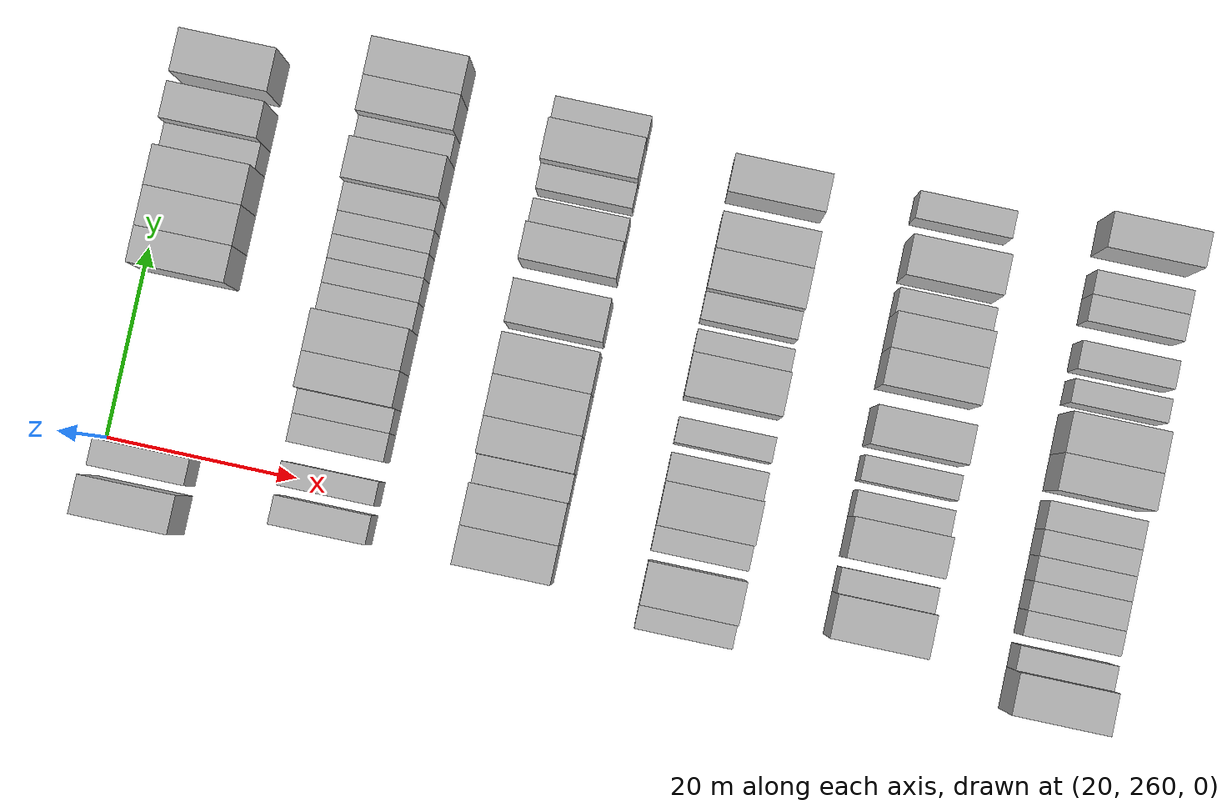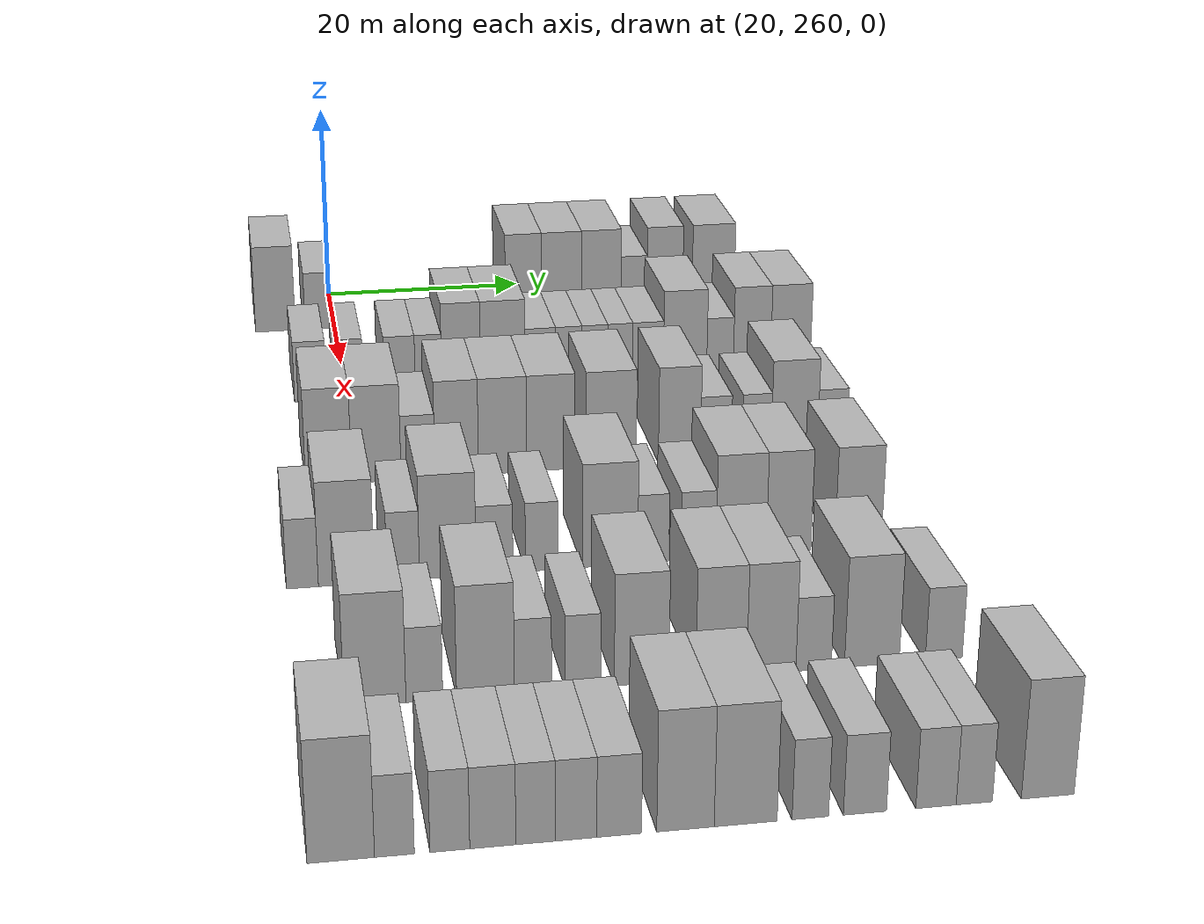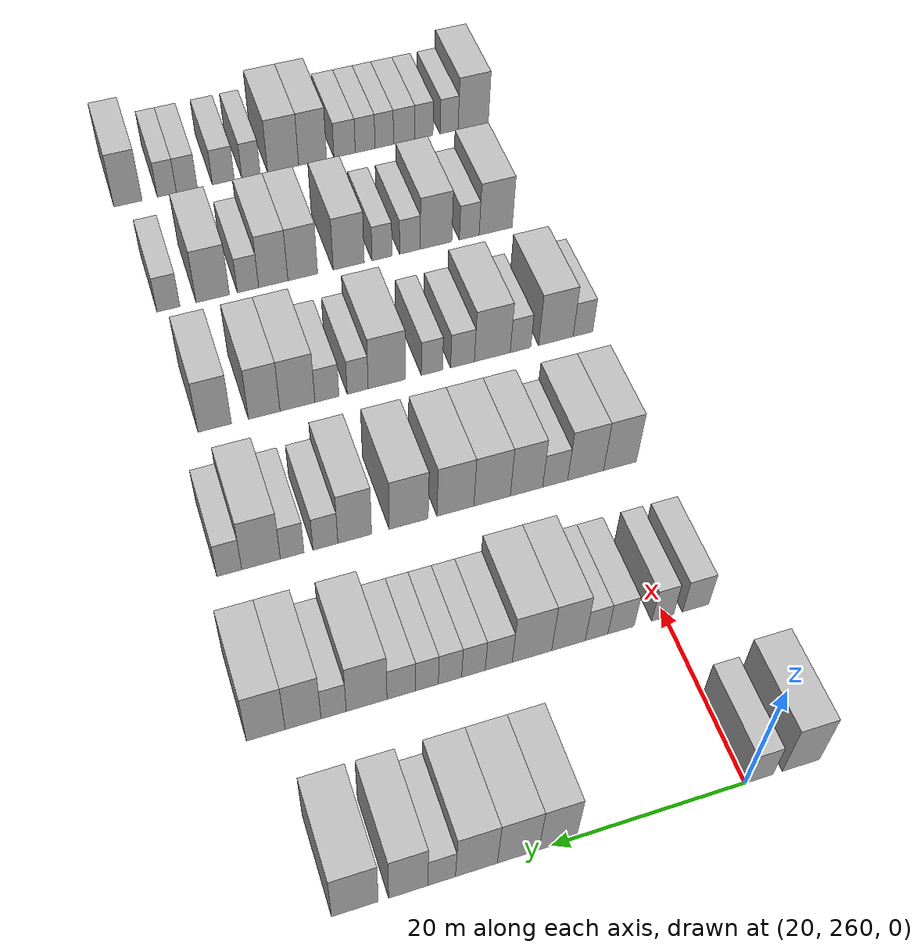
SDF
<sdf version="1.6">
 <world name="default">
  <model name="building_147">
   <static>1</static>
   <pose>25.0000 254.0329 0 0.000000 0.000000 0.000000</pose>
   <link name="link">
    <pose>0 0 4.50 0 0 0</pose>
    <collision name="collision"><geometry><box><size>10.0000 3.9989 9.0000</size></box></geometry></collision>
    <visual name="visual">
     <cast_shadows>0</cast_shadows>
     <geometry><box><size>10.0000 3.9989 9.0000</size></box></geometry>
     <material>
      <script>
       <uri>model://HANNAS_wall/materials/scripts</uri>
       <uri>model://HANNAS_wall/materials/textures</uri>
       <name>vrc/HANNAS_wall</name>
      </script>
     </material>
    </visual>
   </link>
  </model>
  <model name="building_148">
   <static>1</static>
   <pose>25.0000 258.4112 0 0.000000 0.000000 0.000000</pose>
   <link name="link">
    <pose>0 0 3.00 0 0 0</pose>
    <collision name="collision"><geometry><box><size>10.0000 2.7577 6.0000</size></box></geometry></collision>
    <visual name="visual">
     <cast_shadows>0</cast_shadows>
     <geometry><box><size>10.0000 2.7577 6.0000</size></box></geometry>
     <material>
      <script>
       <uri>model://HANNAS_wall/materials/scripts</uri>
       <uri>model://HANNAS_wall/materials/textures</uri>
       <name>vrc/HANNAS_wall</name>
      </script>
     </material>
    </visual>
   </link>
  </model>
  <model name="building_149">
   <static>1</static>
   <pose>25.0000 279.4441 0 0.000000 0.000000 0.000000</pose>
   <link name="link">
    <pose>0 0 4.50 0 0 0</pose>
    <collision name="collision"><geometry><box><size>10.0000 3.7694 9.0000</size></box></geometry></collision>
    <visual name="visual">
     <cast_shadows>0</cast_shadows>
     <geometry><box><size>10.0000 3.7694 9.0000</size></box></geometry>
     <material>
      <script>
       <uri>model://HANNAS_wall/materials/scripts</uri>
       <uri>model://HANNAS_wall/materials/textures</uri>
       <name>vrc/HANNAS_wall</name>
      </script>
     </material>
    </visual>
   </link>
  </model>
  <model name="building_150">
   <static>1</static>
   <pose>25.0000 283.4043 0 0.000000 0.000000 0.000000</pose>
   <link name="link">
    <pose>0 0 4.50 0 0 0</pose>
    <collision name="collision"><geometry><box><size>10.0000 4.1510 9.0000</size></box></geometry></collision>
    <visual name="visual">
     <cast_shadows>0</cast_shadows>
     <geometry><box><size>10.0000 4.1510 9.0000</size></box></geometry>
     <material>
      <script>
       <uri>model://HANNAS_wall/materials/scripts</uri>
       <uri>model://HANNAS_wall/materials/textures</uri>
       <name>vrc/HANNAS_wall</name>
      </script>
     </material>
    </visual>
   </link>
  </model>
  <model name="building_151">
   <static>1</static>
   <pose>25.0000 287.5503 0 0.000000 0.000000 0.000000</pose>
   <link name="link">
    <pose>0 0 4.50 0 0 0</pose>
    <collision name="collision"><geometry><box><size>10.0000 4.1408 9.0000</size></box></geometry></collision>
    <visual name="visual">
     <cast_shadows>0</cast_shadows>
     <geometry><box><size>10.0000 4.1408 9.0000</size></box></geometry>
     <material>
      <script>
       <uri>model://HANNAS_wall/materials/scripts</uri>
       <uri>model://HANNAS_wall/materials/textures</uri>
       <name>vrc/HANNAS_wall</name>
      </script>
     </material>
    </visual>
   </link>
  </model>
  <model name="building_152">
   <static>1</static>
   <pose>25.0000 290.9792 0 0.000000 0.000000 0.000000</pose>
   <link name="link">
    <pose>0 0 3.00 0 0 0</pose>
    <collision name="collision"><geometry><box><size>10.0000 2.7170 6.0000</size></box></geometry></collision>
    <visual name="visual">
     <cast_shadows>0</cast_shadows>
     <geometry><box><size>10.0000 2.7170 6.0000</size></box></geometry>
     <material>
      <script>
       <uri>model://HANNAS_wall/materials/scripts</uri>
       <uri>model://HANNAS_wall/materials/textures</uri>
       <name>vrc/HANNAS_wall</name>
      </script>
     </material>
    </visual>
   </link>
  </model>
  <model name="building_153">
   <static>1</static>
   <pose>25.0000 294.2269 0 0.000000 0.000000 0.000000</pose>
   <link name="link">
    <pose>0 0 4.50 0 0 0</pose>
    <collision name="collision"><geometry><box><size>10.0000 3.7784 9.0000</size></box></geometry></collision>
    <visual name="visual">
     <cast_shadows>0</cast_shadows>
     <geometry><box><size>10.0000 3.7784 9.0000</size></box></geometry>
     <material>
      <script>
       <uri>model://HANNAS_wall/materials/scripts</uri>
       <uri>model://HANNAS_wall/materials/textures</uri>
       <name>vrc/HANNAS_wall</name>
      </script>
     </material>
    </visual>
   </link>
  </model>
  <model name="building_154">
   <static>1</static>
   <pose>25.0000 299.3567 0 0.000000 0.000000 0.000000</pose>
   <link name="link">
    <pose>0 0 4.50 0 0 0</pose>
    <collision name="collision"><geometry><box><size>10.0000 4.4814 9.0000</size></box></geometry></collision>
    <visual name="visual">
     <cast_shadows>0</cast_shadows>
     <geometry><box><size>10.0000 4.4814 9.0000</size></box></geometry>
     <material>
      <script>
       <uri>model://HANNAS_wall/materials/scripts</uri>
       <uri>model://HANNAS_wall/materials/textures</uri>
       <name>vrc/HANNAS_wall</name>
      </script>
     </material>
    </visual>
   </link>
  </model>
  <model name="building_321">
   <static>1</static>
   <pose>44.0000 256.5595 0 0.000000 0.000000 0.000000</pose>
   <link name="link">
    <pose>0 0 3.00 0 0 0</pose>
    <collision name="collision"><geometry><box><size>10.0000 2.9918 6.0000</size></box></geometry></collision>
    <visual name="visual">
     <cast_shadows>0</cast_shadows>
     <geometry><box><size>10.0000 2.9918 6.0000</size></box></geometry>
     <material>
      <script>
       <uri>model://HANNAS_wall/materials/scripts</uri>
       <uri>model://HANNAS_wall/materials/textures</uri>
       <name>vrc/HANNAS_wall</name>
      </script>
     </material>
    </visual>
   </link>
  </model>
  <model name="building_322">
   <static>1</static>
   <pose>44.0000 260.2918 0 0.000000 0.000000 0.000000</pose>
   <link name="link">
    <pose>0 0 3.00 0 0 0</pose>
    <collision name="collision"><geometry><box><size>10.0000 2.4728 6.0000</size></box></geometry></collision>
    <visual name="visual">
     <cast_shadows>0</cast_shadows>
     <geometry><box><size>10.0000 2.4728 6.0000</size></box></geometry>
     <material>
      <script>
       <uri>model://HANNAS_wall/materials/scripts</uri>
       <uri>model://HANNAS_wall/materials/textures</uri>
       <name>vrc/HANNAS_wall</name>
      </script>
     </material>
    </visual>
   </link>
  </model>
  <model name="building_323">
   <static>1</static>
   <pose>44.0000 264.9875 0 0.000000 0.000000 0.000000</pose>
   <link name="link">
    <pose>0 0 3.00 0 0 0</pose>
    <collision name="collision"><geometry><box><size>10.0000 2.9187 6.0000</size></box></geometry></collision>
    <visual name="visual">
     <cast_shadows>0</cast_shadows>
     <geometry><box><size>10.0000 2.9187 6.0000</size></box></geometry>
     <material>
      <script>
       <uri>model://HANNAS_wall/materials/scripts</uri>
       <uri>model://HANNAS_wall/materials/textures</uri>
       <name>vrc/HANNAS_wall</name>
      </script>
     </material>
    </visual>
   </link>
  </model>
  <model name="building_324">
   <static>1</static>
   <pose>44.0000 267.7029 0 0.000000 0.000000 0.000000</pose>
   <link name="link">
    <pose>0 0 3.00 0 0 0</pose>
    <collision name="collision"><geometry><box><size>10.0000 2.5121 6.0000</size></box></geometry></collision>
    <visual name="visual">
     <cast_shadows>0</cast_shadows>
     <geometry><box><size>10.0000 2.5121 6.0000</size></box></geometry>
     <material>
      <script>
       <uri>model://HANNAS_wall/materials/scripts</uri>
       <uri>model://HANNAS_wall/materials/textures</uri>
       <name>vrc/HANNAS_wall</name>
      </script>
     </material>
    </visual>
   </link>
  </model>
  <model name="building_325">
   <static>1</static>
   <pose>44.0000 270.8079 0 0.000000 0.000000 0.000000</pose>
   <link name="link">
    <pose>0 0 4.50 0 0 0</pose>
    <collision name="collision"><geometry><box><size>10.0000 3.6978 9.0000</size></box></geometry></collision>
    <visual name="visual">
     <cast_shadows>0</cast_shadows>
     <geometry><box><size>10.0000 3.6978 9.0000</size></box></geometry>
     <material>
      <script>
       <uri>model://HANNAS_wall/materials/scripts</uri>
       <uri>model://HANNAS_wall/materials/textures</uri>
       <name>vrc/HANNAS_wall</name>
      </script>
     </material>
    </visual>
   </link>
  </model>
  <model name="building_326">
   <static>1</static>
   <pose>44.0000 274.8017 0 0.000000 0.000000 0.000000</pose>
   <link name="link">
    <pose>0 0 4.50 0 0 0</pose>
    <collision name="collision"><geometry><box><size>10.0000 4.2897 9.0000</size></box></geometry></collision>
    <visual name="visual">
     <cast_shadows>0</cast_shadows>
     <geometry><box><size>10.0000 4.2897 9.0000</size></box></geometry>
     <material>
      <script>
       <uri>model://HANNAS_wall/materials/scripts</uri>
       <uri>model://HANNAS_wall/materials/textures</uri>
       <name>vrc/HANNAS_wall</name>
      </script>
     </material>
    </visual>
   </link>
  </model>
  <model name="building_327">
   <static>1</static>
   <pose>44.0000 278.4101 0 0.000000 0.000000 0.000000</pose>
   <link name="link">
    <pose>0 0 3.00 0 0 0</pose>
    <collision name="collision"><geometry><box><size>10.0000 2.9271 6.0000</size></box></geometry></collision>
    <visual name="visual">
     <cast_shadows>0</cast_shadows>
     <geometry><box><size>10.0000 2.9271 6.0000</size></box></geometry>
     <material>
      <script>
       <uri>model://HANNAS_wall/materials/scripts</uri>
       <uri>model://HANNAS_wall/materials/textures</uri>
       <name>vrc/HANNAS_wall</name>
      </script>
     </material>
    </visual>
   </link>
  </model>
  <model name="building_328">
   <static>1</static>
   <pose>44.0000 281.1395 0 0.000000 0.000000 0.000000</pose>
   <link name="link">
    <pose>0 0 3.00 0 0 0</pose>
    <collision name="collision"><geometry><box><size>10.0000 2.5317 6.0000</size></box></geometry></collision>
    <visual name="visual">
     <cast_shadows>0</cast_shadows>
     <geometry><box><size>10.0000 2.5317 6.0000</size></box></geometry>
     <material>
      <script>
       <uri>model://HANNAS_wall/materials/scripts</uri>
       <uri>model://HANNAS_wall/materials/textures</uri>
       <name>vrc/HANNAS_wall</name>
      </script>
     </material>
    </visual>
   </link>
  </model>
  <model name="building_329">
   <static>1</static>
   <pose>44.0000 283.6534 0 0.000000 0.000000 0.000000</pose>
   <link name="link">
    <pose>0 0 3.00 0 0 0</pose>
    <collision name="collision"><geometry><box><size>10.0000 2.4962 6.0000</size></box></geometry></collision>
    <visual name="visual">
     <cast_shadows>0</cast_shadows>
     <geometry><box><size>10.0000 2.4962 6.0000</size></box></geometry>
     <material>
      <script>
       <uri>model://HANNAS_wall/materials/scripts</uri>
       <uri>model://HANNAS_wall/materials/textures</uri>
       <name>vrc/HANNAS_wall</name>
      </script>
     </material>
    </visual>
   </link>
  </model>
  <model name="building_330">
   <static>1</static>
   <pose>44.0000 286.1094 0 0.000000 0.000000 0.000000</pose>
   <link name="link">
    <pose>0 0 3.00 0 0 0</pose>
    <collision name="collision"><geometry><box><size>10.0000 2.4158 6.0000</size></box></geometry></collision>
    <visual name="visual">
     <cast_shadows>0</cast_shadows>
     <geometry><box><size>10.0000 2.4158 6.0000</size></box></geometry>
     <material>
      <script>
       <uri>model://HANNAS_wall/materials/scripts</uri>
       <uri>model://HANNAS_wall/materials/textures</uri>
       <name>vrc/HANNAS_wall</name>
      </script>
     </material>
    </visual>
   </link>
  </model>
  <model name="building_331">
   <static>1</static>
   <pose>44.0000 288.8158 0 0.000000 0.000000 0.000000</pose>
   <link name="link">
    <pose>0 0 3.00 0 0 0</pose>
    <collision name="collision"><geometry><box><size>10.0000 2.9971 6.0000</size></box></geometry></collision>
    <visual name="visual">
     <cast_shadows>0</cast_shadows>
     <geometry><box><size>10.0000 2.9971 6.0000</size></box></geometry>
     <material>
      <script>
       <uri>model://HANNAS_wall/materials/scripts</uri>
       <uri>model://HANNAS_wall/materials/textures</uri>
       <name>vrc/HANNAS_wall</name>
      </script>
     </material>
    </visual>
   </link>
  </model>
  <model name="building_332">
   <static>1</static>
   <pose>44.0000 292.4411 0 0.000000 0.000000 0.000000</pose>
   <link name="link">
    <pose>0 0 4.50 0 0 0</pose>
    <collision name="collision"><geometry><box><size>10.0000 4.2535 9.0000</size></box></geometry></collision>
    <visual name="visual">
     <cast_shadows>0</cast_shadows>
     <geometry><box><size>10.0000 4.2535 9.0000</size></box></geometry>
     <material>
      <script>
       <uri>model://HANNAS_wall/materials/scripts</uri>
       <uri>model://HANNAS_wall/materials/textures</uri>
       <name>vrc/HANNAS_wall</name>
      </script>
     </material>
    </visual>
   </link>
  </model>
  <model name="building_333">
   <static>1</static>
   <pose>44.0000 295.8753 0 0.000000 0.000000 0.000000</pose>
   <link name="link">
    <pose>0 0 3.00 0 0 0</pose>
    <collision name="collision"><geometry><box><size>10.0000 2.6148 6.0000</size></box></geometry></collision>
    <visual name="visual">
     <cast_shadows>0</cast_shadows>
     <geometry><box><size>10.0000 2.6148 6.0000</size></box></geometry>
     <material>
      <script>
       <uri>model://HANNAS_wall/materials/scripts</uri>
       <uri>model://HANNAS_wall/materials/textures</uri>
       <name>vrc/HANNAS_wall</name>
      </script>
     </material>
    </visual>
   </link>
  </model>
  <model name="building_334">
   <static>1</static>
   <pose>44.0000 299.0225 0 0.000000 0.000000 0.000000</pose>
   <link name="link">
    <pose>0 0 4.50 0 0 0</pose>
    <collision name="collision"><geometry><box><size>10.0000 3.6796 9.0000</size></box></geometry></collision>
    <visual name="visual">
     <cast_shadows>0</cast_shadows>
     <geometry><box><size>10.0000 3.6796 9.0000</size></box></geometry>
     <material>
      <script>
       <uri>model://HANNAS_wall/materials/scripts</uri>
       <uri>model://HANNAS_wall/materials/textures</uri>
       <name>vrc/HANNAS_wall</name>
      </script>
     </material>
    </visual>
   </link>
  </model>
  <model name="building_335">
   <static>1</static>
   <pose>44.0000 302.8385 0 0.000000 0.000000 0.000000</pose>
   <link name="link">
    <pose>0 0 4.50 0 0 0</pose>
    <collision name="collision"><geometry><box><size>10.0000 3.9523 9.0000</size></box></geometry></collision>
    <visual name="visual">
     <cast_shadows>0</cast_shadows>
     <geometry><box><size>10.0000 3.9523 9.0000</size></box></geometry>
     <material>
      <script>
       <uri>model://HANNAS_wall/materials/scripts</uri>
       <uri>model://HANNAS_wall/materials/textures</uri>
       <name>vrc/HANNAS_wall</name>
      </script>
     </material>
    </visual>
   </link>
  </model>
  <model name="building_501">
   <static>1</static>
   <pose>63.0000 257.0962 0 0.000000 0.000000 0.000000</pose>
   <link name="link">
    <pose>0 0 4.50 0 0 0</pose>
    <collision name="collision"><geometry><box><size>10.0000 3.9691 9.0000</size></box></geometry></collision>
    <visual name="visual">
     <cast_shadows>0</cast_shadows>
     <geometry><box><size>10.0000 3.9691 9.0000</size></box></geometry>
     <material>
      <script>
       <uri>model://HANNAS_wall/materials/scripts</uri>
       <uri>model://HANNAS_wall/materials/textures</uri>
       <name>vrc/HANNAS_wall</name>
      </script>
     </material>
    </visual>
   </link>
  </model>
  <model name="building_502">
   <static>1</static>
   <pose>63.0000 261.2250 0 0.000000 0.000000 0.000000</pose>
   <link name="link">
    <pose>0 0 4.50 0 0 0</pose>
    <collision name="collision"><geometry><box><size>10.0000 4.2884 9.0000</size></box></geometry></collision>
    <visual name="visual">
     <cast_shadows>0</cast_shadows>
     <geometry><box><size>10.0000 4.2884 9.0000</size></box></geometry>
     <material>
      <script>
       <uri>model://HANNAS_wall/materials/scripts</uri>
       <uri>model://HANNAS_wall/materials/textures</uri>
       <name>vrc/HANNAS_wall</name>
      </script>
     </material>
    </visual>
   </link>
  </model>
  <model name="building_503">
   <static>1</static>
   <pose>63.0000 264.8479 0 0.000000 0.000000 0.000000</pose>
   <link name="link">
    <pose>0 0 3.00 0 0 0</pose>
    <collision name="collision"><geometry><box><size>10.0000 2.9575 6.0000</size></box></geometry></collision>
    <visual name="visual">
     <cast_shadows>0</cast_shadows>
     <geometry><box><size>10.0000 2.9575 6.0000</size></box></geometry>
     <material>
      <script>
       <uri>model://HANNAS_wall/materials/scripts</uri>
       <uri>model://HANNAS_wall/materials/textures</uri>
       <name>vrc/HANNAS_wall</name>
      </script>
     </material>
    </visual>
   </link>
  </model>
  <model name="building_504">
   <static>1</static>
   <pose>63.0000 268.2348 0 0.000000 0.000000 0.000000</pose>
   <link name="link">
    <pose>0 0 4.50 0 0 0</pose>
    <collision name="collision"><geometry><box><size>10.0000 3.8164 9.0000</size></box></geometry></collision>
    <visual name="visual">
     <cast_shadows>0</cast_shadows>
     <geometry><box><size>10.0000 3.8164 9.0000</size></box></geometry>
     <material>
      <script>
       <uri>model://HANNAS_wall/materials/scripts</uri>
       <uri>model://HANNAS_wall/materials/textures</uri>
       <name>vrc/HANNAS_wall</name>
      </script>
     </material>
    </visual>
   </link>
  </model>
  <model name="building_505">
   <static>1</static>
   <pose>63.0000 272.2669 0 0.000000 0.000000 0.000000</pose>
   <link name="link">
    <pose>0 0 4.50 0 0 0</pose>
    <collision name="collision"><geometry><box><size>10.0000 4.2477 9.0000</size></box></geometry></collision>
    <visual name="visual">
     <cast_shadows>0</cast_shadows>
     <geometry><box><size>10.0000 4.2477 9.0000</size></box></geometry>
     <material>
      <script>
       <uri>model://HANNAS_wall/materials/scripts</uri>
       <uri>model://HANNAS_wall/materials/textures</uri>
       <name>vrc/HANNAS_wall</name>
      </script>
     </material>
    </visual>
   </link>
  </model>
  <model name="building_506">
   <static>1</static>
   <pose>63.0000 276.5246 0 0.000000 0.000000 0.000000</pose>
   <link name="link">
    <pose>0 0 4.50 0 0 0</pose>
    <collision name="collision"><geometry><box><size>10.0000 4.2677 9.0000</size></box></geometry></collision>
    <visual name="visual">
     <cast_shadows>0</cast_shadows>
     <geometry><box><size>10.0000 4.2677 9.0000</size></box></geometry>
     <material>
      <script>
       <uri>model://HANNAS_wall/materials/scripts</uri>
       <uri>model://HANNAS_wall/materials/textures</uri>
       <name>vrc/HANNAS_wall</name>
      </script>
     </material>
    </visual>
   </link>
  </model>
  <model name="building_507">
   <static>1</static>
   <pose>63.0000 281.8827 0 0.000000 0.000000 0.000000</pose>
   <link name="link">
    <pose>0 0 4.50 0 0 0</pose>
    <collision name="collision"><geometry><box><size>10.0000 4.4486 9.0000</size></box></geometry></collision>
    <visual name="visual">
     <cast_shadows>0</cast_shadows>
     <geometry><box><size>10.0000 4.4486 9.0000</size></box></geometry>
     <material>
      <script>
       <uri>model://HANNAS_wall/materials/scripts</uri>
       <uri>model://HANNAS_wall/materials/textures</uri>
       <name>vrc/HANNAS_wall</name>
      </script>
     </material>
    </visual>
   </link>
  </model>
  <model name="building_508">
   <static>1</static>
   <pose>63.0000 288.0001 0 0.000000 0.000000 0.000000</pose>
   <link name="link">
    <pose>0 0 4.50 0 0 0</pose>
    <collision name="collision"><geometry><box><size>10.0000 3.7861 9.0000</size></box></geometry></collision>
    <visual name="visual">
     <cast_shadows>0</cast_shadows>
     <geometry><box><size>10.0000 3.7861 9.0000</size></box></geometry>
     <material>
      <script>
       <uri>model://HANNAS_wall/materials/scripts</uri>
       <uri>model://HANNAS_wall/materials/textures</uri>
       <name>vrc/HANNAS_wall</name>
      </script>
     </material>
    </visual>
   </link>
  </model>
  <model name="building_509">
   <static>1</static>
   <pose>63.0000 291.2832 0 0.000000 0.000000 0.000000</pose>
   <link name="link">
    <pose>0 0 3.00 0 0 0</pose>
    <collision name="collision"><geometry><box><size>10.0000 2.7801 6.0000</size></box></geometry></collision>
    <visual name="visual">
     <cast_shadows>0</cast_shadows>
     <geometry><box><size>10.0000 2.7801 6.0000</size></box></geometry>
     <material>
      <script>
       <uri>model://HANNAS_wall/materials/scripts</uri>
       <uri>model://HANNAS_wall/materials/textures</uri>
       <name>vrc/HANNAS_wall</name>
      </script>
     </material>
    </visual>
   </link>
  </model>
  <model name="building_510">
   <static>1</static>
   <pose>63.0000 294.9832 0 0.000000 0.000000 0.000000</pose>
   <link name="link">
    <pose>0 0 3.00 0 0 0</pose>
    <collision name="collision"><geometry><box><size>10.0000 2.6200 6.0000</size></box></geometry></collision>
    <visual name="visual">
     <cast_shadows>0</cast_shadows>
     <geometry><box><size>10.0000 2.6200 6.0000</size></box></geometry>
     <material>
      <script>
       <uri>model://HANNAS_wall/materials/scripts</uri>
       <uri>model://HANNAS_wall/materials/textures</uri>
       <name>vrc/HANNAS_wall</name>
      </script>
     </material>
    </visual>
   </link>
  </model>
  <model name="building_511">
   <static>1</static>
   <pose>63.0000 298.4128 0 0.000000 0.000000 0.000000</pose>
   <link name="link">
    <pose>0 0 4.50 0 0 0</pose>
    <collision name="collision"><geometry><box><size>10.0000 4.2390 9.0000</size></box></geometry></collision>
    <visual name="visual">
     <cast_shadows>0</cast_shadows>
     <geometry><box><size>10.0000 4.2390 9.0000</size></box></geometry>
     <material>
      <script>
       <uri>model://HANNAS_wall/materials/scripts</uri>
       <uri>model://HANNAS_wall/materials/textures</uri>
       <name>vrc/HANNAS_wall</name>
      </script>
     </material>
    </visual>
   </link>
  </model>
  <model name="building_512">
   <static>1</static>
   <pose>63.0000 301.8926 0 0.000000 0.000000 0.000000</pose>
   <link name="link">
    <pose>0 0 3.00 0 0 0</pose>
    <collision name="collision"><geometry><box><size>10.0000 2.7206 6.0000</size></box></geometry></collision>
    <visual name="visual">
     <cast_shadows>0</cast_shadows>
     <geometry><box><size>10.0000 2.7206 6.0000</size></box></geometry>
     <material>
      <script>
       <uri>model://HANNAS_wall/materials/scripts</uri>
       <uri>model://HANNAS_wall/materials/textures</uri>
       <name>vrc/HANNAS_wall</name>
      </script>
     </material>
    </visual>
   </link>
  </model>
  <model name="building_645">
   <static>1</static>
   <pose>82.0000 253.8685 0 0.000000 0.000000 0.000000</pose>
   <link name="link">
    <pose>0 0 3.00 0 0 0</pose>
    <collision name="collision"><geometry><box><size>10.0000 2.5103 6.0000</size></box></geometry></collision>
    <visual name="visual">
     <cast_shadows>0</cast_shadows>
     <geometry><box><size>10.0000 2.5103 6.0000</size></box></geometry>
     <material>
      <script>
       <uri>model://HANNAS_wall/materials/scripts</uri>
       <uri>model://HANNAS_wall/materials/textures</uri>
       <name>vrc/HANNAS_wall</name>
      </script>
     </material>
    </visual>
   </link>
  </model>
  <model name="building_646">
   <static>1</static>
   <pose>82.0000 257.3293 0 0.000000 0.000000 0.000000</pose>
   <link name="link">
    <pose>0 0 4.50 0 0 0</pose>
    <collision name="collision"><geometry><box><size>10.0000 4.4112 9.0000</size></box></geometry></collision>
    <visual name="visual">
     <cast_shadows>0</cast_shadows>
     <geometry><box><size>10.0000 4.4112 9.0000</size></box></geometry>
     <material>
      <script>
       <uri>model://HANNAS_wall/materials/scripts</uri>
       <uri>model://HANNAS_wall/materials/textures</uri>
       <name>vrc/HANNAS_wall</name>
      </script>
     </material>
    </visual>
   </link>
  </model>
  <model name="building_647">
   <static>1</static>
   <pose>82.0000 261.8302 0 0.000000 0.000000 0.000000</pose>
   <link name="link">
    <pose>0 0 3.00 0 0 0</pose>
    <collision name="collision"><geometry><box><size>10.0000 2.5906 6.0000</size></box></geometry></collision>
    <visual name="visual">
     <cast_shadows>0</cast_shadows>
     <geometry><box><size>10.0000 2.5906 6.0000</size></box></geometry>
     <material>
      <script>
       <uri>model://HANNAS_wall/materials/scripts</uri>
       <uri>model://HANNAS_wall/materials/textures</uri>
       <name>vrc/HANNAS_wall</name>
      </script>
     </material>
    </visual>
   </link>
  </model>
  <model name="building_648">
   <static>1</static>
   <pose>82.0000 265.3749 0 0.000000 0.000000 0.000000</pose>
   <link name="link">
    <pose>0 0 4.50 0 0 0</pose>
    <collision name="collision"><geometry><box><size>10.0000 4.4988 9.0000</size></box></geometry></collision>
    <visual name="visual">
     <cast_shadows>0</cast_shadows>
     <geometry><box><size>10.0000 4.4988 9.0000</size></box></geometry>
     <material>
      <script>
       <uri>model://HANNAS_wall/materials/scripts</uri>
       <uri>model://HANNAS_wall/materials/textures</uri>
       <name>vrc/HANNAS_wall</name>
      </script>
     </material>
    </visual>
   </link>
  </model>
  <model name="building_649">
   <static>1</static>
   <pose>82.0000 269.1047 0 0.000000 0.000000 0.000000</pose>
   <link name="link">
    <pose>0 0 3.00 0 0 0</pose>
    <collision name="collision"><geometry><box><size>10.0000 2.9608 6.0000</size></box></geometry></collision>
    <visual name="visual">
     <cast_shadows>0</cast_shadows>
     <geometry><box><size>10.0000 2.9608 6.0000</size></box></geometry>
     <material>
      <script>
       <uri>model://HANNAS_wall/materials/scripts</uri>
       <uri>model://HANNAS_wall/materials/textures</uri>
       <name>vrc/HANNAS_wall</name>
      </script>
     </material>
    </visual>
   </link>
  </model>
  <model name="building_650">
   <static>1</static>
   <pose>82.0000 272.8936 0 0.000000 0.000000 0.000000</pose>
   <link name="link">
    <pose>0 0 3.00 0 0 0</pose>
    <collision name="collision"><geometry><box><size>10.0000 2.6171 6.0000</size></box></geometry></collision>
    <visual name="visual">
     <cast_shadows>0</cast_shadows>
     <geometry><box><size>10.0000 2.6171 6.0000</size></box></geometry>
     <material>
      <script>
       <uri>model://HANNAS_wall/materials/scripts</uri>
       <uri>model://HANNAS_wall/materials/textures</uri>
       <name>vrc/HANNAS_wall</name>
      </script>
     </material>
    </visual>
   </link>
  </model>
  <model name="building_651">
   <static>1</static>
   <pose>82.0000 278.4467 0 0.000000 0.000000 0.000000</pose>
   <link name="link">
    <pose>0 0 4.50 0 0 0</pose>
    <collision name="collision"><geometry><box><size>10.0000 4.4891 9.0000</size></box></geometry></collision>
    <visual name="visual">
     <cast_shadows>0</cast_shadows>
     <geometry><box><size>10.0000 4.4891 9.0000</size></box></geometry>
     <material>
      <script>
       <uri>model://HANNAS_wall/materials/scripts</uri>
       <uri>model://HANNAS_wall/materials/textures</uri>
       <name>vrc/HANNAS_wall</name>
      </script>
     </material>
    </visual>
   </link>
  </model>
  <model name="building_652">
   <static>1</static>
   <pose>82.0000 281.9617 0 0.000000 0.000000 0.000000</pose>
   <link name="link">
    <pose>0 0 3.00 0 0 0</pose>
    <collision name="collision"><geometry><box><size>10.0000 2.5410 6.0000</size></box></geometry></collision>
    <visual name="visual">
     <cast_shadows>0</cast_shadows>
     <geometry><box><size>10.0000 2.5410 6.0000</size></box></geometry>
     <material>
      <script>
       <uri>model://HANNAS_wall/materials/scripts</uri>
       <uri>model://HANNAS_wall/materials/textures</uri>
       <name>vrc/HANNAS_wall</name>
      </script>
     </material>
    </visual>
   </link>
  </model>
  <model name="building_653">
   <static>1</static>
   <pose>82.0000 285.6716 0 0.000000 0.000000 0.000000</pose>
   <link name="link">
    <pose>0 0 3.00 0 0 0</pose>
    <collision name="collision"><geometry><box><size>10.0000 2.8788 6.0000</size></box></geometry></collision>
    <visual name="visual">
     <cast_shadows>0</cast_shadows>
     <geometry><box><size>10.0000 2.8788 6.0000</size></box></geometry>
     <material>
      <script>
       <uri>model://HANNAS_wall/materials/scripts</uri>
       <uri>model://HANNAS_wall/materials/textures</uri>
       <name>vrc/HANNAS_wall</name>
      </script>
     </material>
    </visual>
   </link>
  </model>
  <model name="building_654">
   <static>1</static>
   <pose>82.0000 289.1881 0 0.000000 0.000000 0.000000</pose>
   <link name="link">
    <pose>0 0 4.50 0 0 0</pose>
    <collision name="collision"><geometry><box><size>10.0000 4.1543 9.0000</size></box></geometry></collision>
    <visual name="visual">
     <cast_shadows>0</cast_shadows>
     <geometry><box><size>10.0000 4.1543 9.0000</size></box></geometry>
     <material>
      <script>
       <uri>model://HANNAS_wall/materials/scripts</uri>
       <uri>model://HANNAS_wall/materials/textures</uri>
       <name>vrc/HANNAS_wall</name>
      </script>
     </material>
    </visual>
   </link>
  </model>
  <model name="building_655">
   <static>1</static>
   <pose>82.0000 293.1317 0 0.000000 0.000000 0.000000</pose>
   <link name="link">
    <pose>0 0 4.50 0 0 0</pose>
    <collision name="collision"><geometry><box><size>10.0000 3.7328 9.0000</size></box></geometry></collision>
    <visual name="visual">
     <cast_shadows>0</cast_shadows>
     <geometry><box><size>10.0000 3.7328 9.0000</size></box></geometry>
     <material>
      <script>
       <uri>model://HANNAS_wall/materials/scripts</uri>
       <uri>model://HANNAS_wall/materials/textures</uri>
       <name>vrc/HANNAS_wall</name>
      </script>
     </material>
    </visual>
   </link>
  </model>
  <model name="building_656">
   <static>1</static>
   <pose>82.0000 298.9500 0 0.000000 0.000000 0.000000</pose>
   <link name="link">
    <pose>0 0 4.50 0 0 0</pose>
    <collision name="collision"><geometry><box><size>10.0000 3.9039 9.0000</size></box></geometry></collision>
    <visual name="visual">
     <cast_shadows>0</cast_shadows>
     <geometry><box><size>10.0000 3.9039 9.0000</size></box></geometry>
     <material>
      <script>
       <uri>model://HANNAS_wall/materials/scripts</uri>
       <uri>model://HANNAS_wall/materials/textures</uri>
       <name>vrc/HANNAS_wall</name>
      </script>
     </material>
    </visual>
   </link>
  </model>
  <model name="building_820">
   <static>1</static>
   <pose>101.0000 258.0669 0 0.000000 0.000000 0.000000</pose>
   <link name="link">
    <pose>0 0 4.50 0 0 0</pose>
    <collision name="collision"><geometry><box><size>10.0000 4.4283 9.0000</size></box></geometry></collision>
    <visual name="visual">
     <cast_shadows>0</cast_shadows>
     <geometry><box><size>10.0000 4.4283 9.0000</size></box></geometry>
     <material>
      <script>
       <uri>model://HANNAS_wall/materials/scripts</uri>
       <uri>model://HANNAS_wall/materials/textures</uri>
       <name>vrc/HANNAS_wall</name>
      </script>
     </material>
    </visual>
   </link>
  </model>
  <model name="building_821">
   <static>1</static>
   <pose>101.0000 261.6004 0 0.000000 0.000000 0.000000</pose>
   <link name="link">
    <pose>0 0 3.00 0 0 0</pose>
    <collision name="collision"><geometry><box><size>10.0000 2.6388 6.0000</size></box></geometry></collision>
    <visual name="visual">
     <cast_shadows>0</cast_shadows>
     <geometry><box><size>10.0000 2.6388 6.0000</size></box></geometry>
     <material>
      <script>
       <uri>model://HANNAS_wall/materials/scripts</uri>
       <uri>model://HANNAS_wall/materials/textures</uri>
       <name>vrc/HANNAS_wall</name>
      </script>
     </material>
    </visual>
   </link>
  </model>
  <model name="building_822">
   <static>1</static>
   <pose>101.0000 266.0103 0 0.000000 0.000000 0.000000</pose>
   <link name="link">
    <pose>0 0 4.50 0 0 0</pose>
    <collision name="collision"><geometry><box><size>10.0000 4.1810 9.0000</size></box></geometry></collision>
    <visual name="visual">
     <cast_shadows>0</cast_shadows>
     <geometry><box><size>10.0000 4.1810 9.0000</size></box></geometry>
     <material>
      <script>
       <uri>model://HANNAS_wall/materials/scripts</uri>
       <uri>model://HANNAS_wall/materials/textures</uri>
       <name>vrc/HANNAS_wall</name>
      </script>
     </material>
    </visual>
   </link>
  </model>
  <model name="building_823">
   <static>1</static>
   <pose>101.0000 269.4530 0 0.000000 0.000000 0.000000</pose>
   <link name="link">
    <pose>0 0 3.00 0 0 0</pose>
    <collision name="collision"><geometry><box><size>10.0000 2.7044 6.0000</size></box></geometry></collision>
    <visual name="visual">
     <cast_shadows>0</cast_shadows>
     <geometry><box><size>10.0000 2.7044 6.0000</size></box></geometry>
     <material>
      <script>
       <uri>model://HANNAS_wall/materials/scripts</uri>
       <uri>model://HANNAS_wall/materials/textures</uri>
       <name>vrc/HANNAS_wall</name>
      </script>
     </material>
    </visual>
   </link>
  </model>
  <model name="building_824">
   <static>1</static>
   <pose>101.0000 273.1030 0 0.000000 0.000000 0.000000</pose>
   <link name="link">
    <pose>0 0 3.00 0 0 0</pose>
    <collision name="collision"><geometry><box><size>10.0000 2.5957 6.0000</size></box></geometry></collision>
    <visual name="visual">
     <cast_shadows>0</cast_shadows>
     <geometry><box><size>10.0000 2.5957 6.0000</size></box></geometry>
     <material>
      <script>
       <uri>model://HANNAS_wall/materials/scripts</uri>
       <uri>model://HANNAS_wall/materials/textures</uri>
       <name>vrc/HANNAS_wall</name>
      </script>
     </material>
    </visual>
   </link>
  </model>
  <model name="building_825">
   <static>1</static>
   <pose>101.0000 277.4077 0 0.000000 0.000000 0.000000</pose>
   <link name="link">
    <pose>0 0 4.50 0 0 0</pose>
    <collision name="collision"><geometry><box><size>10.0000 4.0135 9.0000</size></box></geometry></collision>
    <visual name="visual">
     <cast_shadows>0</cast_shadows>
     <geometry><box><size>10.0000 4.0135 9.0000</size></box></geometry>
     <material>
      <script>
       <uri>model://HANNAS_wall/materials/scripts</uri>
       <uri>model://HANNAS_wall/materials/textures</uri>
       <name>vrc/HANNAS_wall</name>
      </script>
     </material>
    </visual>
   </link>
  </model>
  <model name="building_826">
   <static>1</static>
   <pose>101.0000 283.3101 0 0.000000 0.000000 0.000000</pose>
   <link name="link">
    <pose>0 0 4.50 0 0 0</pose>
    <collision name="collision"><geometry><box><size>10.0000 3.7914 9.0000</size></box></geometry></collision>
    <visual name="visual">
     <cast_shadows>0</cast_shadows>
     <geometry><box><size>10.0000 3.7914 9.0000</size></box></geometry>
     <material>
      <script>
       <uri>model://HANNAS_wall/materials/scripts</uri>
       <uri>model://HANNAS_wall/materials/textures</uri>
       <name>vrc/HANNAS_wall</name>
      </script>
     </material>
    </visual>
   </link>
  </model>
  <model name="building_827">
   <static>1</static>
   <pose>101.0000 287.0579 0 0.000000 0.000000 0.000000</pose>
   <link name="link">
    <pose>0 0 4.50 0 0 0</pose>
    <collision name="collision"><geometry><box><size>10.0000 3.7042 9.0000</size></box></geometry></collision>
    <visual name="visual">
     <cast_shadows>0</cast_shadows>
     <geometry><box><size>10.0000 3.7042 9.0000</size></box></geometry>
     <material>
      <script>
       <uri>model://HANNAS_wall/materials/scripts</uri>
       <uri>model://HANNAS_wall/materials/textures</uri>
       <name>vrc/HANNAS_wall</name>
      </script>
     </material>
    </visual>
   </link>
  </model>
  <model name="building_828">
   <static>1</static>
   <pose>101.0000 290.2467 0 0.000000 0.000000 0.000000</pose>
   <link name="link">
    <pose>0 0 3.00 0 0 0</pose>
    <collision name="collision"><geometry><box><size>10.0000 2.6733 6.0000</size></box></geometry></collision>
    <visual name="visual">
     <cast_shadows>0</cast_shadows>
     <geometry><box><size>10.0000 2.6733 6.0000</size></box></geometry>
     <material>
      <script>
       <uri>model://HANNAS_wall/materials/scripts</uri>
       <uri>model://HANNAS_wall/materials/textures</uri>
       <name>vrc/HANNAS_wall</name>
      </script>
     </material>
    </visual>
   </link>
  </model>
  <model name="building_829">
   <static>1</static>
   <pose>101.0000 294.6658 0 0.000000 0.000000 0.000000</pose>
   <link name="link">
    <pose>0 0 4.50 0 0 0</pose>
    <collision name="collision"><geometry><box><size>10.0000 4.1650 9.0000</size></box></geometry></collision>
    <visual name="visual">
     <cast_shadows>0</cast_shadows>
     <geometry><box><size>10.0000 4.1650 9.0000</size></box></geometry>
     <material>
      <script>
       <uri>model://HANNAS_wall/materials/scripts</uri>
       <uri>model://HANNAS_wall/materials/textures</uri>
       <name>vrc/HANNAS_wall</name>
      </script>
     </material>
    </visual>
   </link>
  </model>
  <model name="building_830">
   <static>1</static>
   <pose>101.0000 300.1673 0 0.000000 0.000000 0.000000</pose>
   <link name="link">
    <pose>0 0 3.00 0 0 0</pose>
    <collision name="collision"><geometry><box><size>10.0000 2.8379 6.0000</size></box></geometry></collision>
    <visual name="visual">
     <cast_shadows>0</cast_shadows>
     <geometry><box><size>10.0000 2.8379 6.0000</size></box></geometry>
     <material>
      <script>
       <uri>model://HANNAS_wall/materials/scripts</uri>
       <uri>model://HANNAS_wall/materials/textures</uri>
       <name>vrc/HANNAS_wall</name>
      </script>
     </material>
    </visual>
   </link>
  </model>
  <model name="building_980">
   <static>1</static>
   <pose>120.0000 254.3756 0 0.000000 0.000000 0.000000</pose>
   <link name="link">
    <pose>0 0 4.50 0 0 0</pose>
    <collision name="collision"><geometry><box><size>10.0000 4.2882 9.0000</size></box></geometry></collision>
    <visual name="visual">
     <cast_shadows>0</cast_shadows>
     <geometry><box><size>10.0000 4.2882 9.0000</size></box></geometry>
     <material>
      <script>
       <uri>model://HANNAS_wall/materials/scripts</uri>
       <uri>model://HANNAS_wall/materials/textures</uri>
       <name>vrc/HANNAS_wall</name>
      </script>
     </material>
    </visual>
   </link>
  </model>
  <model name="building_981">
   <static>1</static>
   <pose>120.0000 257.7893 0 0.000000 0.000000 0.000000</pose>
   <link name="link">
    <pose>0 0 3.00 0 0 0</pose>
    <collision name="collision"><geometry><box><size>10.0000 2.5393 6.0000</size></box></geometry></collision>
    <visual name="visual">
     <cast_shadows>0</cast_shadows>
     <geometry><box><size>10.0000 2.5393 6.0000</size></box></geometry>
     <material>
      <script>
       <uri>model://HANNAS_wall/materials/scripts</uri>
       <uri>model://HANNAS_wall/materials/textures</uri>
       <name>vrc/HANNAS_wall</name>
      </script>
     </material>
    </visual>
   </link>
  </model>
  <model name="building_982">
   <static>1</static>
   <pose>120.0000 261.3383 0 0.000000 0.000000 0.000000</pose>
   <link name="link">
    <pose>0 0 3.00 0 0 0</pose>
    <collision name="collision"><geometry><box><size>10.0000 2.5586 6.0000</size></box></geometry></collision>
    <visual name="visual">
     <cast_shadows>0</cast_shadows>
     <geometry><box><size>10.0000 2.5586 6.0000</size></box></geometry>
     <material>
      <script>
       <uri>model://HANNAS_wall/materials/scripts</uri>
       <uri>model://HANNAS_wall/materials/textures</uri>
       <name>vrc/HANNAS_wall</name>
      </script>
     </material>
    </visual>
   </link>
  </model>
  <model name="building_983">
   <static>1</static>
   <pose>120.0000 264.1067 0 0.000000 0.000000 0.000000</pose>
   <link name="link">
    <pose>0 0 3.00 0 0 0</pose>
    <collision name="collision"><geometry><box><size>10.0000 2.9782 6.0000</size></box></geometry></collision>
    <visual name="visual">
     <cast_shadows>0</cast_shadows>
     <geometry><box><size>10.0000 2.9782 6.0000</size></box></geometry>
     <material>
      <script>
       <uri>model://HANNAS_wall/materials/scripts</uri>
       <uri>model://HANNAS_wall/materials/textures</uri>
       <name>vrc/HANNAS_wall</name>
      </script>
     </material>
    </visual>
   </link>
  </model>
  <model name="building_984">
   <static>1</static>
   <pose>120.0000 266.8793 0 0.000000 0.000000 0.000000</pose>
   <link name="link">
    <pose>0 0 3.00 0 0 0</pose>
    <collision name="collision"><geometry><box><size>10.0000 2.5670 6.0000</size></box></geometry></collision>
    <visual name="visual">
     <cast_shadows>0</cast_shadows>
     <geometry><box><size>10.0000 2.5670 6.0000</size></box></geometry>
     <material>
      <script>
       <uri>model://HANNAS_wall/materials/scripts</uri>
       <uri>model://HANNAS_wall/materials/textures</uri>
       <name>vrc/HANNAS_wall</name>
      </script>
     </material>
    </visual>
   </link>
  </model>
  <model name="building_985">
   <static>1</static>
   <pose>120.0000 269.5185 0 0.000000 0.000000 0.000000</pose>
   <link name="link">
    <pose>0 0 3.00 0 0 0</pose>
    <collision name="collision"><geometry><box><size>10.0000 2.7114 6.0000</size></box></geometry></collision>
    <visual name="visual">
     <cast_shadows>0</cast_shadows>
     <geometry><box><size>10.0000 2.7114 6.0000</size></box></geometry>
     <material>
      <script>
       <uri>model://HANNAS_wall/materials/scripts</uri>
       <uri>model://HANNAS_wall/materials/textures</uri>
       <name>vrc/HANNAS_wall</name>
      </script>
     </material>
    </visual>
   </link>
  </model>
  <model name="building_986">
   <static>1</static>
   <pose>120.0000 272.3419 0 0.000000 0.000000 0.000000</pose>
   <link name="link">
    <pose>0 0 3.00 0 0 0</pose>
    <collision name="collision"><geometry><box><size>10.0000 2.9354 6.0000</size></box></geometry></collision>
    <visual name="visual">
     <cast_shadows>0</cast_shadows>
     <geometry><box><size>10.0000 2.9354 6.0000</size></box></geometry>
     <material>
      <script>
       <uri>model://HANNAS_wall/materials/scripts</uri>
       <uri>model://HANNAS_wall/materials/textures</uri>
       <name>vrc/HANNAS_wall</name>
      </script>
     </material>
    </visual>
   </link>
  </model>
  <model name="building_987">
   <static>1</static>
   <pose>120.0000 276.7137 0 0.000000 0.000000 0.000000</pose>
   <link name="link">
    <pose>0 0 4.50 0 0 0</pose>
    <collision name="collision"><geometry><box><size>10.0000 3.8082 9.0000</size></box></geometry></collision>
    <visual name="visual">
     <cast_shadows>0</cast_shadows>
     <geometry><box><size>10.0000 3.8082 9.0000</size></box></geometry>
     <material>
      <script>
       <uri>model://HANNAS_wall/materials/scripts</uri>
       <uri>model://HANNAS_wall/materials/textures</uri>
       <name>vrc/HANNAS_wall</name>
      </script>
     </material>
    </visual>
   </link>
  </model>
  <model name="building_988">
   <static>1</static>
   <pose>120.0000 280.7199 0 0.000000 0.000000 0.000000</pose>
   <link name="link">
    <pose>0 0 4.50 0 0 0</pose>
    <collision name="collision"><geometry><box><size>10.0000 4.2041 9.0000</size></box></geometry></collision>
    <visual name="visual">
     <cast_shadows>0</cast_shadows>
     <geometry><box><size>10.0000 4.2041 9.0000</size></box></geometry>
     <material>
      <script>
       <uri>model://HANNAS_wall/materials/scripts</uri>
       <uri>model://HANNAS_wall/materials/textures</uri>
       <name>vrc/HANNAS_wall</name>
      </script>
     </material>
    </visual>
   </link>
  </model>
  <model name="building_989">
   <static>1</static>
   <pose>120.0000 285.0536 0 0.000000 0.000000 0.000000</pose>
   <link name="link">
    <pose>0 0 3.00 0 0 0</pose>
    <collision name="collision"><geometry><box><size>10.0000 2.4634 6.0000</size></box></geometry></collision>
    <visual name="visual">
     <cast_shadows>0</cast_shadows>
     <geometry><box><size>10.0000 2.4634 6.0000</size></box></geometry>
     <material>
      <script>
       <uri>model://HANNAS_wall/materials/scripts</uri>
       <uri>model://HANNAS_wall/materials/textures</uri>
       <name>vrc/HANNAS_wall</name>
      </script>
     </material>
    </visual>
   </link>
  </model>
  <model name="building_990">
   <static>1</static>
   <pose>120.0000 288.7464 0 0.000000 0.000000 0.000000</pose>
   <link name="link">
    <pose>0 0 3.00 0 0 0</pose>
    <collision name="collision"><geometry><box><size>10.0000 2.9222 6.0000</size></box></geometry></collision>
    <visual name="visual">
     <cast_shadows>0</cast_shadows>
     <geometry><box><size>10.0000 2.9222 6.0000</size></box></geometry>
     <material>
      <script>
       <uri>model://HANNAS_wall/materials/scripts</uri>
       <uri>model://HANNAS_wall/materials/textures</uri>
       <name>vrc/HANNAS_wall</name>
      </script>
     </material>
    </visual>
   </link>
  </model>
  <model name="building_991">
   <static>1</static>
   <pose>120.0000 293.5908 0 0.000000 0.000000 0.000000</pose>
   <link name="link">
    <pose>0 0 3.00 0 0 0</pose>
    <collision name="collision"><geometry><box><size>10.0000 2.7667 6.0000</size></box></geometry></collision>
    <visual name="visual">
     <cast_shadows>0</cast_shadows>
     <geometry><box><size>10.0000 2.7667 6.0000</size></box></geometry>
     <material>
      <script>
       <uri>model://HANNAS_wall/materials/scripts</uri>
       <uri>model://HANNAS_wall/materials/textures</uri>
       <name>vrc/HANNAS_wall</name>
      </script>
     </material>
    </visual>
   </link>
  </model>
  <model name="building_992">
   <static>1</static>
   <pose>120.0000 296.2194 0 0.000000 0.000000 0.000000</pose>
   <link name="link">
    <pose>0 0 3.00 0 0 0</pose>
    <collision name="collision"><geometry><box><size>10.0000 2.4905 6.0000</size></box></geometry></collision>
    <visual name="visual">
     <cast_shadows>0</cast_shadows>
     <geometry><box><size>10.0000 2.4905 6.0000</size></box></geometry>
     <material>
      <script>
       <uri>model://HANNAS_wall/materials/scripts</uri>
       <uri>model://HANNAS_wall/materials/textures</uri>
       <name>vrc/HANNAS_wall</name>
      </script>
     </material>
    </visual>
   </link>
  </model>
  <model name="building_993">
   <static>1</static>
   <pose>120.0000 301.2990 0 0.000000 0.000000 0.000000</pose>
   <link name="link">
    <pose>0 0 4.50 0 0 0</pose>
    <collision name="collision"><geometry><box><size>10.0000 3.6686 9.0000</size></box></geometry></collision>
    <visual name="visual">
     <cast_shadows>0</cast_shadows>
     <geometry><box><size>10.0000 3.6686 9.0000</size></box></geometry>
     <material>
      <script>
       <uri>model://HANNAS_wall/materials/scripts</uri>
       <uri>model://HANNAS_wall/materials/textures</uri>
       <name>vrc/HANNAS_wall</name>
      </script>
     </material>
    </visual>
   </link>
  </model>
 </world>
</sdf>
